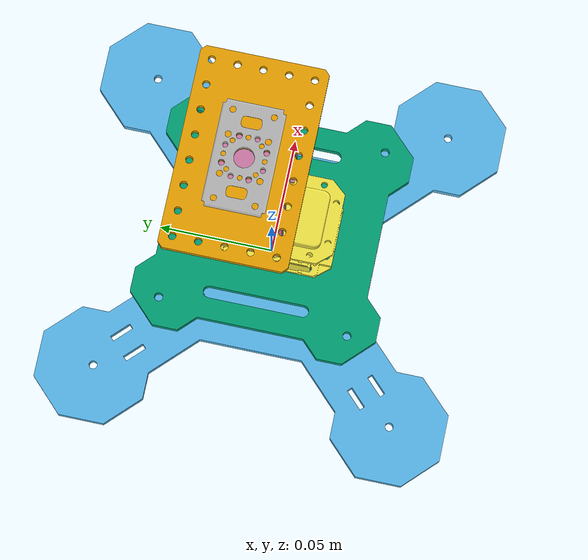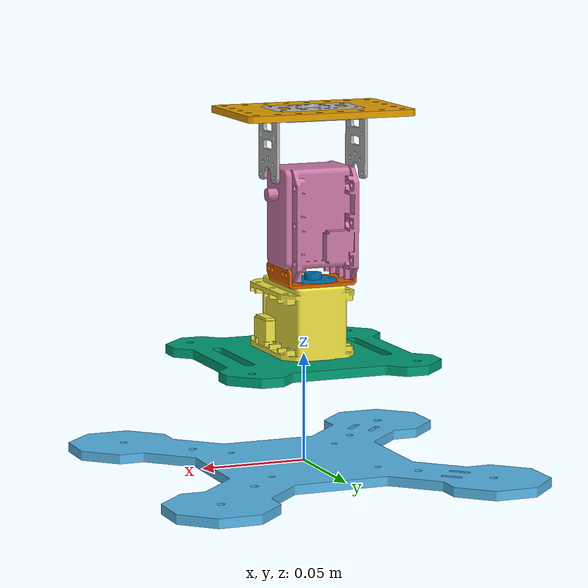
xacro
<?xml version="1.0" ?>
<robot name="widowx_turret" xmlns:xacro="http://ros.org/wiki/xacro">
	<xacro:include filename="$(find widowx_turret_description)/urdf/widowx_turret.urdf.xacro"/>

	<link name="base_footprint">
		<visual>
			<origin xyz="0 0 0" rpy="0 0 0"/>
			<geometry>
				<box size="0.001 0.001 0.001" />
			</geometry>
		</visual>
	</link>
	<xacro:widowx_turret parent="base_footprint" prefix="">
		<origin xyz="0.0 0.0 0.0" rpy="0.0 0.0 0.0"/>
	</xacro:widowx_turret>
</robot>

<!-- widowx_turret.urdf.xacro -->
<robot xmlns:xacro="http://ros.org/wiki/xacro">
   <property name="M_SCALE" value="0.001"/>
   <property name="M_PI" value="3.14159"/>

   <xacro:include filename="$(find widowx_turret_description)/urdf/common_materials.xacro" />

   <!--link name="plate_top_link"/-->

   <xacro:macro name="widowx_turret" params="parent prefix *origin">
      <!-- links -->
      <link name="${prefix}turret_base_link">
         <visual>
            <origin xyz="0 0 0" rpy="0 0 0" />
            <geometry>
               <mesh filename="package://widowx_turret_description/meshes/turret_base.stl"/>
            </geometry>
            <xacro:material_black />
	     </visual>
         <collision>
            <origin xyz="0 0 0" rpy="0 0 0" />
            <geometry>
               <mesh filename="package://widowx_turret_description/meshes/turret_base.stl"/>
            </geometry>
         </collision>
         <inertial>
            <origin xyz="0 0 0" rpy="0 0 0" />
            <mass value="1" />
            <inertia ixx="1.0" ixy="0.0" ixz="0.0" iyy="1.0" iyz="0.0" izz="1.0" />
         </inertial>
      </link>
      <link name="${prefix}servos_base_link">
         <visual>
            <origin xyz="0 0 0" rpy="0 0 0" />
            <geometry>
               <mesh filename="package://widowx_turret_description/meshes/servos_base.stl" />
            </geometry>
            <xacro:material_black />
         </visual>
         <collision>
            <origin xyz="0 0 0" rpy="0 0 0" />
            <geometry>
               <mesh filename="package://widowx_turret_description/meshes/servos_base.stl"/>
            </geometry>
         </collision>
         <inertial>
            <origin xyz="0 0 0" rpy="0 0 0" />
            <mass value="1" />
            <inertia ixx="1.0" ixy="0.0" ixz="0.0" iyy="1.0" iyz="0.0" izz="1.0" />
         </inertial>
      </link>
      <link name="${prefix}servo_pan_link">
         <visual>
			      <origin xyz="0 0 0" rpy="0 0 0" />
            <!--origin xyz="0 0 0" rpy="0 0 0" /-->
            <geometry>
               <mesh filename="package://widowx_turret_description/meshes/MX_28T.stl" />
            </geometry>
            <xacro:material_black />
         </visual>
         <collision>
            <origin xyz="0 0 0" rpy="0 0 0" />
            <geometry>
               <mesh filename="package://widowx_turret_description/meshes/MX_28T.stl" />
            </geometry>
         </collision>
         <inertial>
            <origin xyz="0 0 0" rpy="0 0 0" />
            <mass value="1" />
            <inertia ixx="1.0" ixy="0.0" ixz="0.0" iyy="1.0" iyz="0.0" izz="1.0" />
         </inertial>
      </link>
      <link name="${prefix}servo_horn_link">
         <visual>
			<origin xyz="0 0 0" rpy="${M_PI/2} 0 0" />
			<!--origin xyz="0 0 0" rpy="0 0 0" /-->
            <geometry>
               <mesh filename="package://widowx_turret_description/meshes/servo_horn.stl"/>
            </geometry>
           <xacro:material_black />
         </visual>
         <collision>
            <origin xyz="0 0 0" rpy="${M_PI/2} 0 0" />
            <geometry>
               <mesh filename="package://widowx_turret_description/meshes/servo_horn.stl"/>
            </geometry>
         </collision>
         <inertial>
            <origin xyz="0 0 0" rpy="0 0 0" />
            <mass value="1" />
            <inertia ixx="1.0" ixy="0.0" ixz="0.0" iyy="1.0" iyz="0.0" izz="1.0"/>
         </inertial>
      </link>
      <link name="${prefix}side_link">
         <visual>
            <origin xyz="0 0 0" rpy="${M_PI/2} 0 ${M_PI/2}" />
            <geometry>
               <mesh filename="package://widowx_turret_description/meshes/side.stl"/>
            </geometry>
            <xacro:material_black />
         </visual>
         <collision>
            <origin xyz="0 0 0" rpy="0 0 0" />
            <geometry>
               <mesh filename="package://widowx_turret_description/meshes/side.stl"/>
            </geometry>
         </collision>
         <inertial>
            <origin xyz="0 0 0" rpy="0 0 0" />
            <mass value="1" />
            <inertia ixx="1.0" ixy="0.0" ixz="0.0" iyy="1.0" iyz="0.0" izz="1.0" />
         </inertial>
      </link>
      <link name="${prefix}servo_tilt_link">
         <visual>
            <origin xyz="0 0 ${M_SCALE*41.6}" rpy="${M_PI/2} 0 ${M_PI/2}" />
            <geometry>
               <mesh filename="package://widowx_turret_description/meshes/MX_28T.stl"/>
            </geometry>
            <xacro:material_black />
         </visual>
         <collision>
            <origin xyz="0 0 0" rpy="0 0 0" />
            <geometry>
               <mesh filename="package://widowx_turret_description/meshes/MX_28T.stl"/>
            </geometry>
         </collision>
         <inertial>
            <origin xyz="0 0 0" rpy="0 0 0" />
            <mass value="1" />
            <inertia ixx="1.0" ixy="0.0" ixz="0.0" iyy="1.0" iyz="0.0" izz="1.0" />
         </inertial>
      </link>
      <link name="${prefix}hinge_link">
         <visual>
            <origin xyz="0 0 0" rpy="${M_PI/2} 0 0" />
            <geometry>
               <mesh filename="package://widowx_turret_description/meshes/hinge.stl"/>
            </geometry>
            <xacro:material_black />
         </visual>
         <collision>
            <origin xyz="0 0 0" rpy="0 0 0" />
            <geometry>
               <mesh filename="package://widowx_turret_description/meshes/hinge.stl"/>
            </geometry>
         </collision>
         <inertial>
            <origin xyz="0 0 0" rpy="0 0 0" />
            <mass value="1" />
            <inertia ixx="1.0" ixy="0.0" ixz="0.0" iyy="1.0" iyz="0.0" izz="1.0" />
         </inertial>
      </link>
      <link name="${prefix}top_plate_link">
         <visual>
            <origin xyz="0 0 0" rpy="0 0 1.57" />
            <geometry>
               <mesh filename="package://widowx_turret_description/meshes/top_plate.stl"/>
            </geometry>
            <xacro:material_black />
         </visual>
         <collision>
            <origin xyz="0 0 0" rpy="0 0 0" />
            <geometry>
               <mesh filename="package://widowx_turret_description/meshes/top_plate.stl"/>
            </geometry>
         </collision>
         <inertial>
            <origin xyz="0 0 0" rpy="0 0 0" />
            <mass value="1" />
            <inertia ixx="1.0" ixy="0.0" ixz="0.0" iyy="1.0" iyz="0.0" izz="1.0" />
         </inertial>
      </link>
      <!-- joints -->
      <joint name="${prefix}turret_base_joint" type="fixed">
         <insert_block name="origin" />
         <parent link="${parent}" />
         <child link="${prefix}turret_base_link"/>
      </joint>
      <joint name="${prefix}servos_base_joint" type="fixed">
         <origin xyz="0 0 ${M_SCALE*51}" rpy="0 0 0" />
         <parent link="${prefix}turret_base_link" />
         <child link="${prefix}servos_base_link" />
         <axis xyz="0 0 1" />
         <limit lower="-2.617" upper="2.617" effort="0" velocity="0.785" />
      </joint>
      <joint name="${prefix}joint_2" type="fixed">
         <!--origin xyz="0.04825 0 0.14203" rpy="0 0 0" /-->
         <origin xyz="0 ${M_SCALE*10.8} ${M_SCALE*15.25}" rpy="0 0 0" />
         <parent link="${prefix}servos_base_link" />
         <child link="${prefix}servo_pan_link" />
         <axis xyz="0 1 0" />
         <limit lower="-1.575" upper="1.575" effort="0" velocity="1.571" />
      </joint>

      <joint name="${prefix}servo_horn_joint" type="fixed">
         <origin xyz="0 0 ${M_SCALE*18.25}" rpy="0 0 0" />
         <parent link="${prefix}servo_pan_link" />
         <child link="${prefix}servo_horn_link" />
         <axis xyz="0 1 0" />
         <limit lower="0" upper="2.617" effort="0" velocity="1.571" />
      </joint>
      <joint name="${prefix}joint_4" type="fixed">
         <origin xyz="0 0 0" rpy="0 0 0" />
         <parent link="${prefix}servo_horn_link" />
         <child link="${prefix}side_link" />
         <axis xyz="0 1 0" />
         <limit lower="-1.745" upper="1.745" effort="0" velocity="1.571" />
      </joint>
      <joint name="${prefix}joint_5" type="revolute">
         <origin xyz="0 0 0" rpy="0 0 0" />
         <parent link="${prefix}side_link" />
         <child link="${prefix}servo_tilt_link" />
         <axis xyz="0 0 1" />
         <limit lower="-2.617" upper="2.617" effort="0" velocity="1.571" />
      </joint>
      <joint name="${prefix}joint_6" type="fixed">
         <origin xyz = "0 0 ${M_SCALE*50.25}" rpy="0 0 0" />
         <parent link="${prefix}servo_tilt_link" />
         <child link="${prefix}hinge_link" />
         <axis xyz="0 0 1" />
         <limit lower="-0.31" upper="0.1" effort="0" velocity="0.5" />
      </joint>
      <joint name="${prefix}joint_7" type="fixed">
         <origin xyz = "0 0 ${M_SCALE*29.8}" rpy="0 0 0" />
         <parent link="${prefix}hinge_link" />
         <child link="${prefix}top_plate_link" />
         <axis xyz="0 0 1" />
         <limit lower="-0.31" upper="0.1" effort="0" velocity="0.5" />
      </joint>
   </xacro:macro>

  <transmission name="tran1">
    <type>transmission_interface/SimpleTransmission</type>
    <joint name="joint_1"/>
    <actuator name="motor1">
      <hardwareInterface>EffortJointInterface</hardwareInterface>
      <mechanicalReduction>1</mechanicalReduction>
    </actuator>
  </transmission>

 <transmission name="tran2">
    <type>transmission_interface/SimpleTransmission</type>
    <joint name="joint_2"/>
    <actuator name="motor2">
      <hardwareInterface>EffortJointInterface</hardwareInterface>
      <mechanicalReduction>1</mechanicalReduction>
    </actuator>
  </transmission>

 <transmission name="tran3">
    <type>transmission_interface/SimpleTransmission</type>
    <joint name="joint_3"/>
    <actuator name="motor3">
      <hardwareInterface>EffortJointInterface</hardwareInterface>
      <mechanicalReduction>1</mechanicalReduction>
    </actuator>
  </transmission>

 <transmission name="tran4">
    <type>transmission_interface/SimpleTransmission</type>
    <joint name="joint_4"/>
    <actuator name="motor4">
      <hardwareInterface>EffortJointInterface</hardwareInterface>
      <mechanicalReduction>1</mechanicalReduction>
    </actuator>
  </transmission>

 <transmission name="tran5">
    <type>transmission_interface/SimpleTransmission</type>
    <joint name="joint_6"/>
    <actuator name="motor5">
      <hardwareInterface>EffortJointInterface</hardwareInterface>
      <mechanicalReduction>1</mechanicalReduction>
    </actuator>
  </transmission>

 <transmission name="tran6">
    <type>transmission_interface/SimpleTransmission</type>
    <joint name="joint_7"/>
    <actuator name="motor6">
      <hardwareInterface>EffortJointInterface</hardwareInterface>
      <mechanicalReduction>1</mechanicalReduction>
    </actuator>
  </transmission>

</robot>
